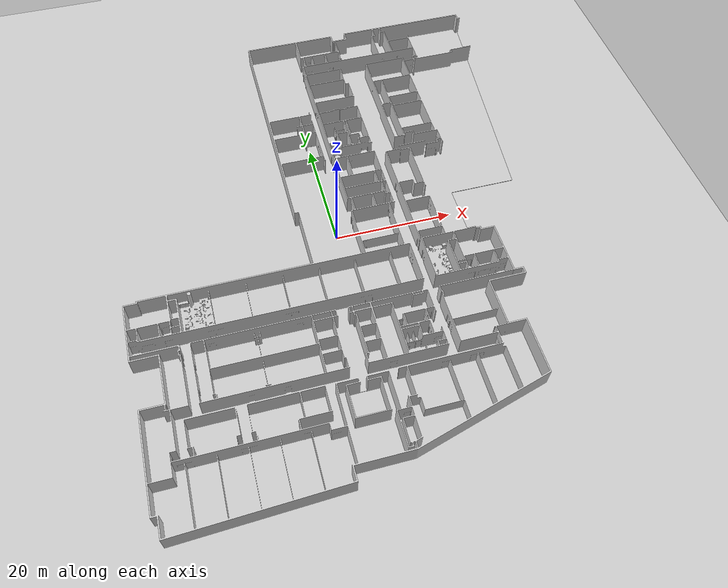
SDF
<sdf version='1.6'>
  <world name='default'>
  <gravity>0 0 -9.8</gravity>
  <model name="ground_plane">
    <static>1</static>
    <link name="link">
        <collision name="collision">
            <geometry>
                <plane>
                    <normal>0 0 1</normal>
                    <size>100 100</size>
                </plane>
            </geometry>
            <surface>
                <contact>
                    <collide_bitmask>65535</collide_bitmask>
                </contact>
                <friction>
                    <ode>
                        <mu>100</mu>
                        <mu2>50</mu2>
                    </ode>
                </friction>
                <bounce/>
            </surface>
            <max_contacts>10</max_contacts>
        </collision>
        <visual name="visual">
            <cast_shadows>0</cast_shadows>
            <geometry>
                <plane>
                    <normal>0 0 1</normal>
                    <size>100 100</size>
                </plane>
            </geometry>
        </visual>
        <self_collide>0</self_collide>
        <enable_wind>0</enable_wind>
        <kinematic>0</kinematic>
    </link>
</model>
    <include>
      <uri>model://sun</uri>
    </include>

    <include>
      <name>ev_9</name>
      <uri>model://floor_plan</uri>
      <pose>-12 0 0 0 0 0</pose>
    </include>

    <gui fullscreen='0'>
      <camera name='user_camera'>
        <pose frame=''>0 -0.5 12.0 0 1.25 1.5666</pose>
        <view_controller>orbit</view_controller>
        <projection_type>perspective</projection_type>
      </camera>
    </gui>

  </world>
</sdf>

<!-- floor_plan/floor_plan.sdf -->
<sdf version="1.6">
  <model name="my_floorplan">
    <static>true</static>
    <link name="floor">
      <visual name="visual">
        <geometry>
          <mesh>
            <uri>model://floor_plan/meshes/EVfloor.dae</uri>
          </mesh>
        </geometry>
        <material>
          <ambient>0.6 0.6 0.6 1</ambient>
          <diffuse>0.8 0.8 0.8 1</diffuse>
        </material>
      </visual>
      <collision name="collision">
        <geometry>
          <mesh>
            <uri>model://floor_plan/meshes/EVfloor.dae</uri>
          </mesh>
        </geometry>
      </collision>
    </link>
  </model>
</sdf>
